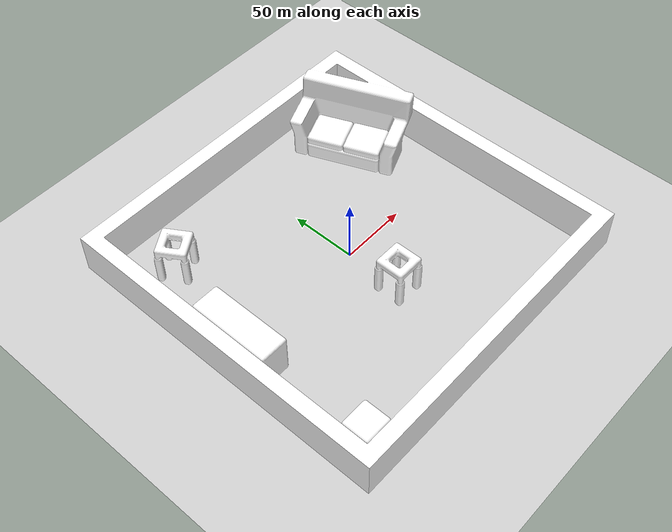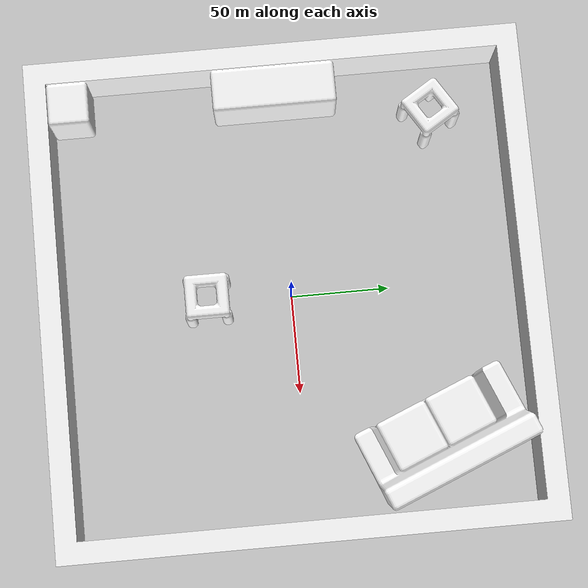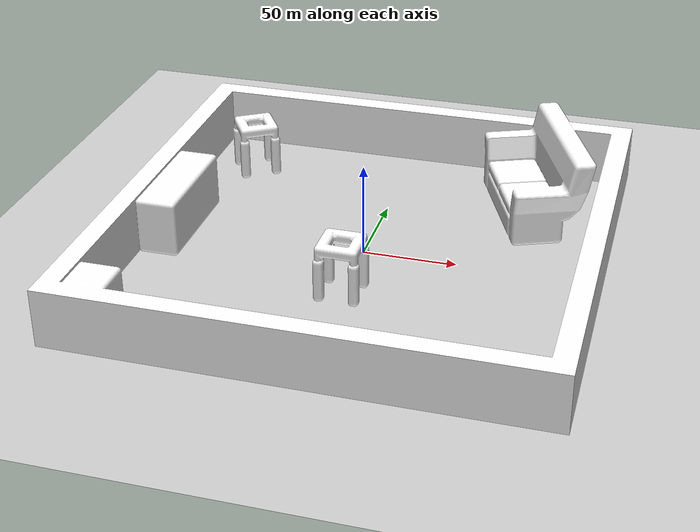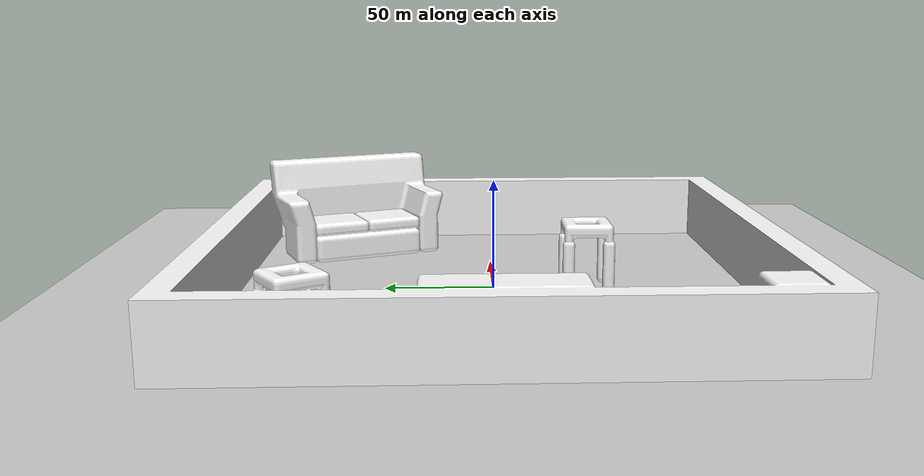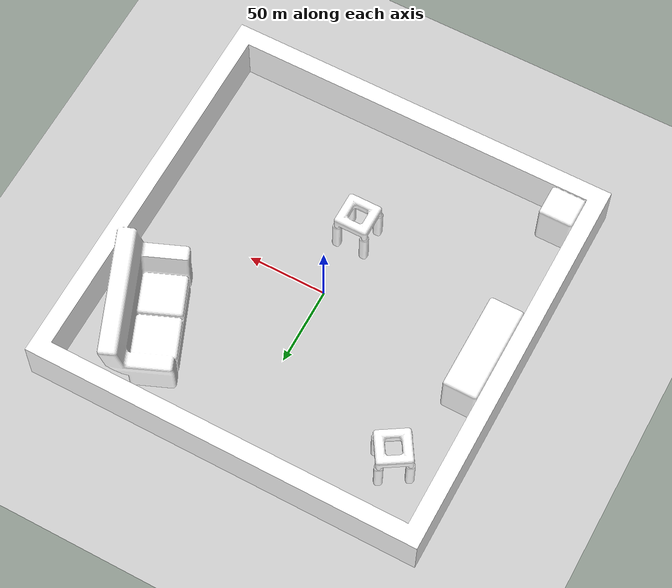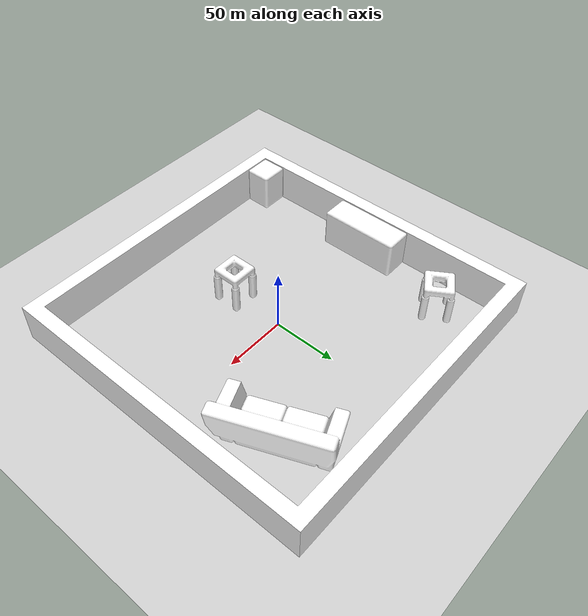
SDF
<?xml version="1.0" ?>
<sdf version="1.10">
    <world name="delivery_world">

        <physics name="1ms" type="ignored">  <!--default from gazebo sim docs-->
            <max_step_size>0.001</max_step_size>
            <real_time_factor>1.0</real_time_factor>
        </physics>
        <plugin
            filename="gz-sim-physics-system"
            name="gz::sim::systems::Physics">
        </plugin>
        <plugin
            filename="gz-sim-user-commands-system"
            name="gz::sim::systems::UserCommands">
        </plugin>  <!--default from gazebo sim docs-->
        <plugin
            filename="gz-sim-scene-broadcaster-system"
            name="gz::sim::systems::SceneBroadcaster">
        </plugin>  <!--default from gazebo sim docs-->

        <plugin name="gz::sim::systems::ApplyLinkWrench" filename="gz-sim-apply-link-wrench-system" />
        <plugin name="gz::sim::systems::Sensors" filename="gz-sim-sensors-system"><render_engine>ogre2</render_engine></plugin>

        <light type="directional" name="sun">  <!--default from gazebo sim docs-->
            <cast_shadows>true</cast_shadows>
            <pose>0 0 10 0 0 0</pose>
            <diffuse>0.8 0.8 0.8 1</diffuse>
            <specular>0.2 0.2 0.2 1</specular>
            <attenuation>
                <range>1000</range>
                <constant>0.9</constant>
                <linear>0.01</linear>
                <quadratic>0.001</quadratic>
            </attenuation>
            <direction>-0.5 0.1 -0.9</direction>
        </light>

        <model name="ground_plane">  <!--default from gazebo sim docs-->
            <static>true</static>
            <link name="link">
                <collision name="collision">
                    <geometry>
                        <plane>
                        <normal>0 0 1</normal>
                        </plane>
                    </geometry>
                    <surface>
                        <friction><ode><mu>0.9</mu><mu2>0.9</mu2></ode></friction>
                    </surface>
                </collision>
                <visual name="visual">
                    <geometry>
                        <plane>
                        <normal>0 0 1</normal>
                        <size>1000 1000</size>
                        </plane>
                    </geometry>
                    <material>
                        <ambient>0.8 0.8 0.8 1</ambient>
                        <diffuse>0.8 0.8 0.8 1</diffuse>
                        <specular>0.8 0.8 0.8 1</specular>
                    </material>
                </visual>
            </link>
        </model>

        <model name="cubes_environment">
            <static>true</static>
            <link name="link">
                <collision name="collision_sofa">
                    <pose>78.39 68.56 19.41 0 0 0.4</pose>
                    <geometry><box><size>40 100 40</size></box></geometry>
                </collision>
                <collision name="collision_straight_tabouret">
                    <pose>0 -42.5 11 0 0 0</pose>
                    <geometry><box><size>25 25 40</size></box></geometry>
                </collision>
                <collision name="collision_twist_tabouret">
                    <pose>-87 78.44 11 0 0 0.56</pose>
                    <geometry><box><size>25 25 40</size></box></geometry>
                </collision>
                <collision name="collision_stillage">
                    <pose>-104.22 -104.78 15.5 0 0 0</pose>
                    <geometry><box><size>25 25 40</size></box></geometry>
                </collision>
                <collision name="collision_closet">
                    <pose>-104.22 0 15.5 0 0 0</pose>
                    <geometry><box><size>25 64 40</size></box></geometry>
                </collision>
                <collision name="collision_tabouret_wall">
                    <pose>0 120.72 15.5 0 0 0</pose>
                    <geometry><box><size>260 12 40</size></box></geometry>
                </collision>
                <collision name="collision_closet_wall">
                    <pose>-120.72 0 15.5 0 0 0</pose>
                    <geometry><box><size>12 260 40</size></box></geometry>
                </collision>
                <collision name="collision_sofa_wall">
                    <pose>120.72 0 15.5 0 0 0</pose>
                    <geometry><box><size>12 260 40</size></box></geometry>
                </collision>
                <collision name="collision_stillage_wall">
                    <pose>0 -120.72 15.5 0 0 0</pose>
                    <geometry><box><size>260 12 40</size></box></geometry>
                </collision>
                <visual name="visual">
                    <geometry><mesh><uri>file:///home/danil/Documents/ROSWorkspaces/RosMiniProject/src/making_delivery/models/furniture.obj</uri></mesh></geometry>
                    <material>
                        <diffuse>1 1 1 1</diffuse>
                        <pbr><metal>
                            <albedo_map>resources://T_Furniture_BC_4K.png</albedo_map>
                            <roughness>1</roughness>
                            <metalness>0</metalness>
                        </metal></pbr>
                    </material>
                </visual>
            </link>
        </model>

        <gui fullscreen="0">  <!--default from gazebo sim docs-->
            <plugin filename="MinimalScene" name="3D View">
              <gz-gui>
                <title>3D View</title>
                <property type="bool" key="showTitleBar">false</property>
                <property type="string" key="state">docked</property>
              </gz-gui>

              <engine>ogre2</engine>
              <scene>scene</scene>
              <ambient_light>0.4 0.4 0.4</ambient_light>
              <background_color>0.8 0.8 0.8</background_color>
              <camera_pose>50 50 50 0 0.5 3.95</camera_pose>  <!--camera forward axis is x, rotation in radians-->
              <camera_clip>
                <near>0.25</near>
                <far>25000</far>
              </camera_clip>
            </plugin>
            <plugin filename="GzSceneManager" name="Scene Manager">
              <gz-gui>
                <property key="resizable" type="bool">false</property>
                <property key="width" type="double">5</property>
                <property key="height" type="double">5</property>
                <property key="state" type="string">floating</property>
                <property key="showTitleBar" type="bool">false</property>
              </gz-gui>
            </plugin>
            <plugin filename="VisualizeLidar" name="Visualize Lidar" />
        </gui>

    </world>
</sdf>
